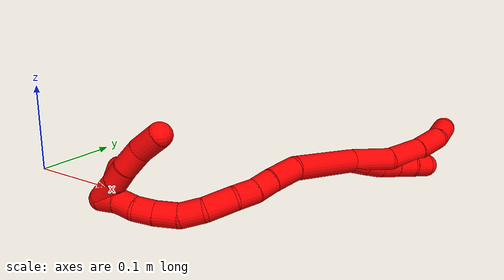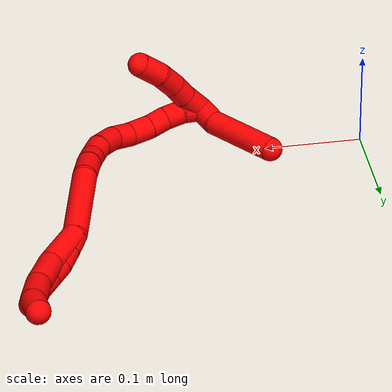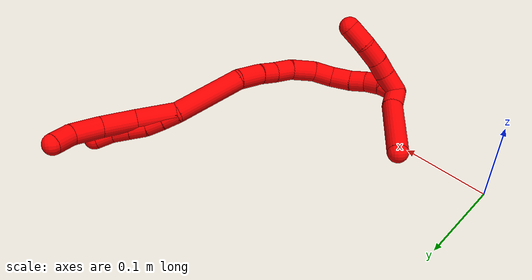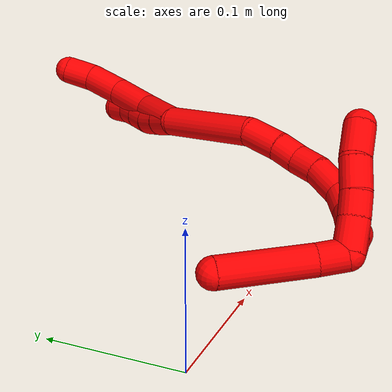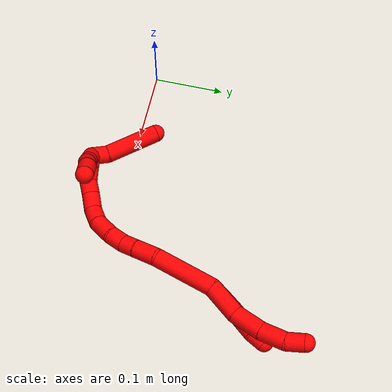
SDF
<sdf version="1.7">
 <world name="default">
  <model name="2">
   <static>0</static>
   <link name="2">
    <collision name="collision-cylinder-e_1_2_8">
     <pose>-0.001746 0.002349 0.023474 -0.099747 -0.073858 0.003688</pose>
     <geometry><cylinder><radius>0.0125</radius><length>0.047312</length></cylinder></geometry>
     <surface>
      <friction><ode><mu>1.16</mu><mu2>1.16</mu2><slip1>0</slip1><slip2>0</slip2></ode></friction>
      <contact><ode><kp>1e+06</kp><kd>1</kd><max_vel>0</max_vel><min_depth>0.001</min_depth></ode></contact>
     </surface>
    </collision>
    <visual name="visual-cylinder-e_1_2_8">
     <pose>-0.001746 0.002349 0.023474 -0.099747 -0.073858 0.003688</pose>
     <geometry><cylinder><radius>0.0125</radius><length>0.047312</length></cylinder></geometry>
     <material><ambient>1 0 0 1</ambient></material>
    </visual>
    <collision name="collision-cylinder-e_2_8_9">
     <pose>-0.004442 0.000691 0.067285 0.194582 -0.045858 -0.004476</pose>
     <geometry><cylinder><radius>0.0125</radius><length>0.041499</length></cylinder></geometry>
     <surface>
      <friction><ode><mu>1.16</mu><mu2>1.16</mu2><slip1>0</slip1><slip2>0</slip2></ode></friction>
      <contact><ode><kp>1e+06</kp><kd>1</kd><max_vel>0</max_vel><min_depth>0.001</min_depth></ode></contact>
     </surface>
    </collision>
    <visual name="visual-cylinder-e_2_8_9">
     <pose>-0.004442 0.000691 0.067285 0.194582 -0.045858 -0.004476</pose>
     <geometry><cylinder><radius>0.0125</radius><length>0.041499</length></cylinder></geometry>
     <material><ambient>1 0 0 1</ambient></material>
    </visual>
    <collision name="collision-cylinder-e_3_9_10">
     <pose>-0.006525 -0.009661 0.104206 0.365336 -0.06364 -0.01176</pose>
     <geometry><cylinder><radius>0.0125</radius><length>0.035586</length></cylinder></geometry>
     <surface>
      <friction><ode><mu>1.16</mu><mu2>1.16</mu2><slip1>0</slip1><slip2>0</slip2></ode></friction>
      <contact><ode><kp>1e+06</kp><kd>1</kd><max_vel>0</max_vel><min_depth>0.001</min_depth></ode></contact>
     </surface>
    </collision>
    <visual name="visual-cylinder-e_3_9_10">
     <pose>-0.006525 -0.009661 0.104206 0.365336 -0.06364 -0.01176</pose>
     <geometry><cylinder><radius>0.0125</radius><length>0.035586</length></cylinder></geometry>
     <material><ambient>1 0 0 1</ambient></material>
    </visual>
    <collision name="collision-cylinder-e_4_10_6">
     <pose>-0.01029 -0.023848 0.13056 0.676513 -0.207142 -0.073097</pose>
     <geometry><cylinder><radius>0.0125</radius><length>0.025603</length></cylinder></geometry>
     <surface>
      <friction><ode><mu>1.16</mu><mu2>1.16</mu2><slip1>0</slip1><slip2>0</slip2></ode></friction>
      <contact><ode><kp>1e+06</kp><kd>1</kd><max_vel>0</max_vel><min_depth>0.001</min_depth></ode></contact>
     </surface>
    </collision>
    <visual name="visual-cylinder-e_4_10_6">
     <pose>-0.01029 -0.023848 0.13056 0.676513 -0.207142 -0.073097</pose>
     <geometry><cylinder><radius>0.0125</radius><length>0.025603</length></cylinder></geometry>
     <material><ambient>1 0 0 1</ambient></material>
    </visual>
    <collision name="collision-cylinder-e_1_2_11">
     <pose>-0.003249 0.001342 0.009362 -0.142418 -0.330883 0.023818</pose>
     <geometry><cylinder><radius>0.0125</radius><length>0.02</length></cylinder></geometry>
     <surface>
      <friction><ode><mu>1.16</mu><mu2>1.16</mu2><slip1>0</slip1><slip2>0</slip2></ode></friction>
      <contact><ode><kp>1e+06</kp><kd>1</kd><max_vel>0</max_vel><min_depth>0.001</min_depth></ode></contact>
     </surface>
    </collision>
    <visual name="visual-cylinder-e_1_2_11">
     <pose>-0.003249 0.001342 0.009362 -0.142418 -0.330883 0.023818</pose>
     <geometry><cylinder><radius>0.0125</radius><length>0.02</length></cylinder></geometry>
     <material><ambient>1 0 0 1</ambient></material>
    </visual>
    <collision name="collision-cylinder-e_2_11_12">
     <pose>-0.009312 0.00409 0.028216 -0.146941 -0.285334 0.021144</pose>
     <geometry><cylinder><radius>0.0125</radius><length>0.02</length></cylinder></geometry>
     <surface>
      <friction><ode><mu>1.16</mu><mu2>1.16</mu2><slip1>0</slip1><slip2>0</slip2></ode></friction>
      <contact><ode><kp>1e+06</kp><kd>1</kd><max_vel>0</max_vel><min_depth>0.001</min_depth></ode></contact>
     </surface>
    </collision>
    <visual name="visual-cylinder-e_2_11_12">
     <pose>-0.009312 0.00409 0.028216 -0.146941 -0.285334 0.021144</pose>
     <geometry><cylinder><radius>0.0125</radius><length>0.02</length></cylinder></geometry>
     <material><ambient>1 0 0 1</ambient></material>
    </visual>
    <collision name="collision-cylinder-e_3_12_13">
     <pose>-0.012877 0.006639 0.047614 -0.115011 -0.075044 0.004322</pose>
     <geometry><cylinder><radius>0.0125</radius><length>0.02</length></cylinder></geometry>
     <surface>
      <friction><ode><mu>1.16</mu><mu2>1.16</mu2><slip1>0</slip1><slip2>0</slip2></ode></friction>
      <contact><ode><kp>1e+06</kp><kd>1</kd><max_vel>0</max_vel><min_depth>0.001</min_depth></ode></contact>
     </surface>
    </collision>
    <visual name="visual-cylinder-e_3_12_13">
     <pose>-0.012877 0.006639 0.047614 -0.115011 -0.075044 0.004322</pose>
     <geometry><cylinder><radius>0.0125</radius><length>0.02</length></cylinder></geometry>
     <material><ambient>1 0 0 1</ambient></material>
    </visual>
    <collision name="collision-cylinder-e_4_13_14">
     <pose>-0.014436 0.008969 0.067416 -0.119279 -0.081023 0.004841</pose>
     <geometry><cylinder><radius>0.0125</radius><length>0.02</length></cylinder></geometry>
     <surface>
      <friction><ode><mu>1.16</mu><mu2>1.16</mu2><slip1>0</slip1><slip2>0</slip2></ode></friction>
      <contact><ode><kp>1e+06</kp><kd>1</kd><max_vel>0</max_vel><min_depth>0.001</min_depth></ode></contact>
     </surface>
    </collision>
    <visual name="visual-cylinder-e_4_13_14">
     <pose>-0.014436 0.008969 0.067416 -0.119279 -0.081023 0.004841</pose>
     <geometry><cylinder><radius>0.0125</radius><length>0.02</length></cylinder></geometry>
     <material><ambient>1 0 0 1</ambient></material>
    </visual>
    <collision name="collision-cylinder-e_5_14_5">
     <pose>-0.017746 0.010029 0.086994 0.013032 -0.252801 -0.001656</pose>
     <geometry><cylinder><radius>0.0125</radius><length>0.02</length></cylinder></geometry>
     <surface>
      <friction><ode><mu>1.16</mu><mu2>1.16</mu2><slip1>0</slip1><slip2>0</slip2></ode></friction>
      <contact><ode><kp>1e+06</kp><kd>1</kd><max_vel>0</max_vel><min_depth>0.001</min_depth></ode></contact>
     </surface>
    </collision>
    <visual name="visual-cylinder-e_5_14_5">
     <pose>-0.017746 0.010029 0.086994 0.013032 -0.252801 -0.001656</pose>
     <geometry><cylinder><radius>0.0125</radius><length>0.02</length></cylinder></geometry>
     <material><ambient>1 0 0 1</ambient></material>
    </visual>
    <collision name="collision-cylinder-e_1_2_15">
     <pose>0.014169 0.008254 -0.03915 -2.93381 0.340364 -2.05085</pose>
     <geometry><cylinder><radius>0.0125</radius><length>0.08489</length></cylinder></geometry>
     <surface>
      <friction><ode><mu>1.16</mu><mu2>1.16</mu2><slip1>0</slip1><slip2>0</slip2></ode></friction>
      <contact><ode><kp>1e+06</kp><kd>1</kd><max_vel>0</max_vel><min_depth>0.001</min_depth></ode></contact>
     </surface>
    </collision>
    <visual name="visual-cylinder-e_1_2_15">
     <pose>0.014169 0.008254 -0.03915 -2.93381 0.340364 -2.05085</pose>
     <geometry><cylinder><radius>0.0125</radius><length>0.08489</length></cylinder></geometry>
     <material><ambient>1 0 0 1</ambient></material>
    </visual>
    <collision name="collision-cylinder-e_2_15_16">
     <pose>0.029427 0.022034 -0.092947 -2.78085 0.069376 -0.3761</pose>
     <geometry><cylinder><radius>0.0125</radius><length>0.031386</length></cylinder></geometry>
     <surface>
      <friction><ode><mu>1.16</mu><mu2>1.16</mu2><slip1>0</slip1><slip2>0</slip2></ode></friction>
      <contact><ode><kp>1e+06</kp><kd>1</kd><max_vel>0</max_vel><min_depth>0.001</min_depth></ode></contact>
     </surface>
    </collision>
    <visual name="visual-cylinder-e_2_15_16">
     <pose>0.029427 0.022034 -0.092947 -2.78085 0.069376 -0.3761</pose>
     <geometry><cylinder><radius>0.0125</radius><length>0.031386</length></cylinder></geometry>
     <material><ambient>1 0 0 1</ambient></material>
    </visual>
    <collision name="collision-cylinder-e_3_16_17">
     <pose>0.030027 0.031449 -0.117263 -2.75909 -0.04673 0.240237</pose>
     <geometry><cylinder><radius>0.0125</radius><length>0.020866</length></cylinder></geometry>
     <surface>
      <friction><ode><mu>1.16</mu><mu2>1.16</mu2><slip1>0</slip1><slip2>0</slip2></ode></friction>
      <contact><ode><kp>1e+06</kp><kd>1</kd><max_vel>0</max_vel><min_depth>0.001</min_depth></ode></contact>
     </surface>
    </collision>
    <visual name="visual-cylinder-e_3_16_17">
     <pose>0.030027 0.031449 -0.117263 -2.75909 -0.04673 0.240237</pose>
     <geometry><cylinder><radius>0.0125</radius><length>0.020866</length></cylinder></geometry>
     <material><ambient>1 0 0 1</ambient></material>
    </visual>
    <collision name="collision-cylinder-e_4_17_18">
     <pose>0.029954 0.037604 -0.138202 -2.9433 0.035964 -0.357718</pose>
     <geometry><cylinder><radius>0.0125</radius><length>0.023007</length></cylinder></geometry>
     <surface>
      <friction><ode><mu>1.16</mu><mu2>1.16</mu2><slip1>0</slip1><slip2>0</slip2></ode></friction>
      <contact><ode><kp>1e+06</kp><kd>1</kd><max_vel>0</max_vel><min_depth>0.001</min_depth></ode></contact>
     </surface>
    </collision>
    <visual name="visual-cylinder-e_4_17_18">
     <pose>0.029954 0.037604 -0.138202 -2.9433 0.035964 -0.357718</pose>
     <geometry><cylinder><radius>0.0125</radius><length>0.023007</length></cylinder></geometry>
     <material><ambient>1 0 0 1</ambient></material>
    </visual>
    <collision name="collision-cylinder-e_5_18_19">
     <pose>0.02745 0.041444 -0.164495 -3.03709 -0.190771 2.14106</pose>
     <geometry><cylinder><radius>0.0125</radius><length>0.030766</length></cylinder></geometry>
     <surface>
      <friction><ode><mu>1.16</mu><mu2>1.16</mu2><slip1>0</slip1><slip2>0</slip2></ode></friction>
      <contact><ode><kp>1e+06</kp><kd>1</kd><max_vel>0</max_vel><min_depth>0.001</min_depth></ode></contact>
     </surface>
    </collision>
    <visual name="visual-cylinder-e_5_18_19">
     <pose>0.02745 0.041444 -0.164495 -3.03709 -0.190771 2.14106</pose>
     <geometry><cylinder><radius>0.0125</radius><length>0.030766</length></cylinder></geometry>
     <material><ambient>1 0 0 1</ambient></material>
    </visual>
    <collision name="collision-cylinder-e_6_19_20">
     <pose>0.02004 0.040957 -0.190463 2.95533 -0.383426 -2.24459</pose>
     <geometry><cylinder><radius>0.0125</radius><length>0.024023</length></cylinder></geometry>
     <surface>
      <friction><ode><mu>1.16</mu><mu2>1.16</mu2><slip1>0</slip1><slip2>0</slip2></ode></friction>
      <contact><ode><kp>1e+06</kp><kd>1</kd><max_vel>0</max_vel><min_depth>0.001</min_depth></ode></contact>
     </surface>
    </collision>
    <visual name="visual-cylinder-e_6_19_20">
     <pose>0.02004 0.040957 -0.190463 2.95533 -0.383426 -2.24459</pose>
     <geometry><cylinder><radius>0.0125</radius><length>0.024023</length></cylinder></geometry>
     <material><ambient>1 0 0 1</ambient></material>
    </visual>
    <collision name="collision-cylinder-e_7_20_21">
     <pose>0.012472 0.033035 -0.211918 2.63295 -0.250202 -0.901161</pose>
     <geometry><cylinder><radius>0.0125</radius><length>0.024837</length></cylinder></geometry>
     <surface>
      <friction><ode><mu>1.16</mu><mu2>1.16</mu2><slip1>0</slip1><slip2>0</slip2></ode></friction>
      <contact><ode><kp>1e+06</kp><kd>1</kd><max_vel>0</max_vel><min_depth>0.001</min_depth></ode></contact>
     </surface>
    </collision>
    <visual name="visual-cylinder-e_7_20_21">
     <pose>0.012472 0.033035 -0.211918 2.63295 -0.250202 -0.901161</pose>
     <geometry><cylinder><radius>0.0125</radius><length>0.024837</length></cylinder></geometry>
     <material><ambient>1 0 0 1</ambient></material>
    </visual>
    <collision name="collision-cylinder-e_8_21_22">
     <pose>0.008376 0.021896 -0.230972 2.58817 -0.10127 -0.353176</pose>
     <geometry><cylinder><radius>0.0125</radius><length>0.020193</length></cylinder></geometry>
     <surface>
      <friction><ode><mu>1.16</mu><mu2>1.16</mu2><slip1>0</slip1><slip2>0</slip2></ode></friction>
      <contact><ode><kp>1e+06</kp><kd>1</kd><max_vel>0</max_vel><min_depth>0.001</min_depth></ode></contact>
     </surface>
    </collision>
    <visual name="visual-cylinder-e_8_21_22">
     <pose>0.008376 0.021896 -0.230972 2.58817 -0.10127 -0.353176</pose>
     <geometry><cylinder><radius>0.0125</radius><length>0.020193</length></cylinder></geometry>
     <material><ambient>1 0 0 1</ambient></material>
    </visual>
    <collision name="collision-cylinder-e_9_22_23">
     <pose>0.00554 0.00926 -0.246056 2.29741 -0.182406 -0.40181</pose>
     <geometry><cylinder><radius>0.0125</radius><length>0.020017</length></cylinder></geometry>
     <surface>
      <friction><ode><mu>1.16</mu><mu2>1.16</mu2><slip1>0</slip1><slip2>0</slip2></ode></friction>
      <contact><ode><kp>1e+06</kp><kd>1</kd><max_vel>0</max_vel><min_depth>0.001</min_depth></ode></contact>
     </surface>
    </collision>
    <visual name="visual-cylinder-e_9_22_23">
     <pose>0.00554 0.00926 -0.246056 2.29741 -0.182406 -0.40181</pose>
     <geometry><cylinder><radius>0.0125</radius><length>0.020017</length></cylinder></geometry>
     <material><ambient>1 0 0 1</ambient></material>
    </visual>
    <collision name="collision-cylinder-e_10_23_1">
     <pose>-0.000518 -0.004027 -0.259449 2.4284 -0.437735 -1.07656</pose>
     <geometry><cylinder><radius>0.0125</radius><length>0.020015</length></cylinder></geometry>
     <surface>
      <friction><ode><mu>1.16</mu><mu2>1.16</mu2><slip1>0</slip1><slip2>0</slip2></ode></friction>
      <contact><ode><kp>1e+06</kp><kd>1</kd><max_vel>0</max_vel><min_depth>0.001</min_depth></ode></contact>
     </surface>
    </collision>
    <visual name="visual-cylinder-e_10_23_1">
     <pose>-0.000518 -0.004027 -0.259449 2.4284 -0.437735 -1.07656</pose>
     <geometry><cylinder><radius>0.0125</radius><length>0.020015</length></cylinder></geometry>
     <material><ambient>1 0 0 1</ambient></material>
    </visual>
    <collision name="collision-cylinder-e_1_1_24">
     <pose>0.006884 -0.009731 -0.259847 -0.035027 1.06418 -0.020623</pose>
     <geometry><cylinder><radius>0.0125</radius><length>0.026632</length></cylinder></geometry>
     <surface>
      <friction><ode><mu>1.16</mu><mu2>1.16</mu2><slip1>0</slip1><slip2>0</slip2></ode></friction>
      <contact><ode><kp>1e+06</kp><kd>1</kd><max_vel>0</max_vel><min_depth>0.001</min_depth></ode></contact>
     </surface>
    </collision>
    <visual name="visual-cylinder-e_1_1_24">
     <pose>0.006884 -0.009731 -0.259847 -0.035027 1.06418 -0.020623</pose>
     <geometry><cylinder><radius>0.0125</radius><length>0.026632</length></cylinder></geometry>
     <material><ambient>1 0 0 1</ambient></material>
    </visual>
    <collision name="collision-cylinder-e_2_24_25">
     <pose>0.027288 -0.010511 -0.248602 0.207256 1.06146 0.121925</pose>
     <geometry><cylinder><radius>0.0125</radius><length>0.020069</length></cylinder></geometry>
     <surface>
      <friction><ode><mu>1.16</mu><mu2>1.16</mu2><slip1>0</slip1><slip2>0</slip2></ode></friction>
      <contact><ode><kp>1e+06</kp><kd>1</kd><max_vel>0</max_vel><min_depth>0.001</min_depth></ode></contact>
     </surface>
    </collision>
    <visual name="visual-cylinder-e_2_24_25">
     <pose>0.027288 -0.010511 -0.248602 0.207256 1.06146 0.121925</pose>
     <geometry><cylinder><radius>0.0125</radius><length>0.020069</length></cylinder></geometry>
     <material><ambient>1 0 0 1</ambient></material>
    </visual>
    <collision name="collision-cylinder-e_3_25_26">
     <pose>0.046168 -0.012912 -0.23641 0.186148 0.930798 0.093684</pose>
     <geometry><cylinder><radius>0.0125</radius><length>0.025231</length></cylinder></geometry>
     <surface>
      <friction><ode><mu>1.16</mu><mu2>1.16</mu2><slip1>0</slip1><slip2>0</slip2></ode></friction>
      <contact><ode><kp>1e+06</kp><kd>1</kd><max_vel>0</max_vel><min_depth>0.001</min_depth></ode></contact>
     </surface>
    </collision>
    <visual name="visual-cylinder-e_3_25_26">
     <pose>0.046168 -0.012912 -0.23641 0.186148 0.930798 0.093684</pose>
     <geometry><cylinder><radius>0.0125</radius><length>0.025231</length></cylinder></geometry>
     <material><ambient>1 0 0 1</ambient></material>
    </visual>
    <collision name="collision-cylinder-e_4_26_4">
     <pose>0.067498 -0.01255 -0.220749 -0.209596 0.925374 -0.104835</pose>
     <geometry><cylinder><radius>0.0125</radius><length>0.028067</length></cylinder></geometry>
     <surface>
      <friction><ode><mu>1.16</mu><mu2>1.16</mu2><slip1>0</slip1><slip2>0</slip2></ode></friction>
      <contact><ode><kp>1e+06</kp><kd>1</kd><max_vel>0</max_vel><min_depth>0.001</min_depth></ode></contact>
     </surface>
    </collision>
    <visual name="visual-cylinder-e_4_26_4">
     <pose>0.067498 -0.01255 -0.220749 -0.209596 0.925374 -0.104835</pose>
     <geometry><cylinder><radius>0.0125</radius><length>0.028067</length></cylinder></geometry>
     <material><ambient>1 0 0 1</ambient></material>
    </visual>
    <collision name="collision-cylinder-e_1_1_27">
     <pose>-0.012156 -0.016971 -0.260839 0.908829 -0.693804 -0.34961</pose>
     <geometry><cylinder><radius>0.0125</radius><length>0.023132</length></cylinder></geometry>
     <surface>
      <friction><ode><mu>1.16</mu><mu2>1.16</mu2><slip1>0</slip1><slip2>0</slip2></ode></friction>
      <contact><ode><kp>1e+06</kp><kd>1</kd><max_vel>0</max_vel><min_depth>0.001</min_depth></ode></contact>
     </surface>
    </collision>
    <visual name="visual-cylinder-e_1_1_27">
     <pose>-0.012156 -0.016971 -0.260839 0.908829 -0.693804 -0.34961</pose>
     <geometry><cylinder><radius>0.0125</radius><length>0.023132</length></cylinder></geometry>
     <material><ambient>1 0 0 1</ambient></material>
    </visual>
    <collision name="collision-cylinder-e_2_27_3">
     <pose>-0.040107 -0.054768 -0.245027 1.24656 -0.564294 -0.410895</pose>
     <geometry><cylinder><radius>0.0125</radius><length>0.076868</length></cylinder></geometry>
     <surface>
      <friction><ode><mu>1.16</mu><mu2>1.16</mu2><slip1>0</slip1><slip2>0</slip2></ode></friction>
      <contact><ode><kp>1e+06</kp><kd>1</kd><max_vel>0</max_vel><min_depth>0.001</min_depth></ode></contact>
     </surface>
    </collision>
    <visual name="visual-cylinder-e_2_27_3">
     <pose>-0.040107 -0.054768 -0.245027 1.24656 -0.564294 -0.410895</pose>
     <geometry><cylinder><radius>0.0125</radius><length>0.076868</length></cylinder></geometry>
     <material><ambient>1 0 0 1</ambient></material>
    </visual>
    <collision name="collision-sphere-3">
     <pose>-0.060662 -0.085552 -0.234681 0 -0 0</pose>
     <geometry><sphere><radius>0.0125</radius></sphere></geometry>
     <surface>
      <friction><ode><mu>1.16</mu><mu2>1.16</mu2><slip1>0</slip1><slip2>0</slip2></ode></friction>
      <contact><ode><kp>1e+06</kp><kd>1</kd><max_vel>0</max_vel><min_depth>0.001</min_depth></ode></contact>
     </surface>
    </collision>
    <visual name="visual-sphere-3">
     <pose>-0.060662 -0.085552 -0.234681 0 -0 0</pose>
     <geometry><sphere><radius>0.0125</radius></sphere></geometry>
     <material><ambient>1 0 0 1</ambient></material>
    </visual>
    <collision name="collision-sphere-27">
     <pose>-0.019552 -0.023985 -0.255373 0 -0 0</pose>
     <geometry><sphere><radius>0.0125</radius></sphere></geometry>
     <surface>
      <friction><ode><mu>1.16</mu><mu2>1.16</mu2><slip1>0</slip1><slip2>0</slip2></ode></friction>
      <contact><ode><kp>1e+06</kp><kd>1</kd><max_vel>0</max_vel><min_depth>0.001</min_depth></ode></contact>
     </surface>
    </collision>
    <visual name="visual-sphere-27">
     <pose>-0.019552 -0.023985 -0.255373 0 -0 0</pose>
     <geometry><sphere><radius>0.0125</radius></sphere></geometry>
     <material><ambient>1 0 0 1</ambient></material>
    </visual>
    <collision name="collision-sphere-4">
     <pose>0.078708 -0.010794 -0.212492 0 -0 0</pose>
     <geometry><sphere><radius>0.0125</radius></sphere></geometry>
     <surface>
      <friction><ode><mu>1.16</mu><mu2>1.16</mu2><slip1>0</slip1><slip2>0</slip2></ode></friction>
      <contact><ode><kp>1e+06</kp><kd>1</kd><max_vel>0</max_vel><min_depth>0.001</min_depth></ode></contact>
     </surface>
    </collision>
    <visual name="visual-sphere-4">
     <pose>0.078708 -0.010794 -0.212492 0 -0 0</pose>
     <geometry><sphere><radius>0.0125</radius></sphere></geometry>
     <material><ambient>1 0 0 1</ambient></material>
    </visual>
    <collision name="collision-sphere-26">
     <pose>0.056287 -0.014307 -0.229006 0 -0 0</pose>
     <geometry><sphere><radius>0.0125</radius></sphere></geometry>
     <surface>
      <friction><ode><mu>1.16</mu><mu2>1.16</mu2><slip1>0</slip1><slip2>0</slip2></ode></friction>
      <contact><ode><kp>1e+06</kp><kd>1</kd><max_vel>0</max_vel><min_depth>0.001</min_depth></ode></contact>
     </surface>
    </collision>
    <visual name="visual-sphere-26">
     <pose>0.056287 -0.014307 -0.229006 0 -0 0</pose>
     <geometry><sphere><radius>0.0125</radius></sphere></geometry>
     <material><ambient>1 0 0 1</ambient></material>
    </visual>
    <collision name="collision-sphere-25">
     <pose>0.036049 -0.011518 -0.243814 0 -0 0</pose>
     <geometry><sphere><radius>0.0125</radius></sphere></geometry>
     <surface>
      <friction><ode><mu>1.16</mu><mu2>1.16</mu2><slip1>0</slip1><slip2>0</slip2></ode></friction>
      <contact><ode><kp>1e+06</kp><kd>1</kd><max_vel>0</max_vel><min_depth>0.001</min_depth></ode></contact>
     </surface>
    </collision>
    <visual name="visual-sphere-25">
     <pose>0.036049 -0.011518 -0.243814 0 -0 0</pose>
     <geometry><sphere><radius>0.0125</radius></sphere></geometry>
     <material><ambient>1 0 0 1</ambient></material>
    </visual>
    <collision name="collision-sphere-24">
     <pose>0.018527 -0.009504 -0.25339 0 -0 0</pose>
     <geometry><sphere><radius>0.0125</radius></sphere></geometry>
     <surface>
      <friction><ode><mu>1.16</mu><mu2>1.16</mu2><slip1>0</slip1><slip2>0</slip2></ode></friction>
      <contact><ode><kp>1e+06</kp><kd>1</kd><max_vel>0</max_vel><min_depth>0.001</min_depth></ode></contact>
     </surface>
    </collision>
    <visual name="visual-sphere-24">
     <pose>0.018527 -0.009504 -0.25339 0 -0 0</pose>
     <geometry><sphere><radius>0.0125</radius></sphere></geometry>
     <material><ambient>1 0 0 1</ambient></material>
    </visual>
    <collision name="collision-sphere-1">
     <pose>-0.00476 -0.009957 -0.266304 0 -0 0</pose>
     <geometry><sphere><radius>0.0125</radius></sphere></geometry>
     <surface>
      <friction><ode><mu>1.16</mu><mu2>1.16</mu2><slip1>0</slip1><slip2>0</slip2></ode></friction>
      <contact><ode><kp>1e+06</kp><kd>1</kd><max_vel>0</max_vel><min_depth>0.001</min_depth></ode></contact>
     </surface>
    </collision>
    <visual name="visual-sphere-1">
     <pose>-0.00476 -0.009957 -0.266304 0 -0 0</pose>
     <geometry><sphere><radius>0.0125</radius></sphere></geometry>
     <material><ambient>1 0 0 1</ambient></material>
    </visual>
    <collision name="collision-sphere-23">
     <pose>0.003724 0.001903 -0.252595 0 -0 0</pose>
     <geometry><sphere><radius>0.0125</radius></sphere></geometry>
     <surface>
      <friction><ode><mu>1.16</mu><mu2>1.16</mu2><slip1>0</slip1><slip2>0</slip2></ode></friction>
      <contact><ode><kp>1e+06</kp><kd>1</kd><max_vel>0</max_vel><min_depth>0.001</min_depth></ode></contact>
     </surface>
    </collision>
    <visual name="visual-sphere-23">
     <pose>0.003724 0.001903 -0.252595 0 -0 0</pose>
     <geometry><sphere><radius>0.0125</radius></sphere></geometry>
     <material><ambient>1 0 0 1</ambient></material>
    </visual>
    <collision name="collision-sphere-22">
     <pose>0.007355 0.016616 -0.239517 0 -0 0</pose>
     <geometry><sphere><radius>0.0125</radius></sphere></geometry>
     <surface>
      <friction><ode><mu>1.16</mu><mu2>1.16</mu2><slip1>0</slip1><slip2>0</slip2></ode></friction>
      <contact><ode><kp>1e+06</kp><kd>1</kd><max_vel>0</max_vel><min_depth>0.001</min_depth></ode></contact>
     </surface>
    </collision>
    <visual name="visual-sphere-22">
     <pose>0.007355 0.016616 -0.239517 0 -0 0</pose>
     <geometry><sphere><radius>0.0125</radius></sphere></geometry>
     <material><ambient>1 0 0 1</ambient></material>
    </visual>
    <collision name="collision-sphere-21">
     <pose>0.009397 0.027175 -0.222427 0 -0 0</pose>
     <geometry><sphere><radius>0.0125</radius></sphere></geometry>
     <surface>
      <friction><ode><mu>1.16</mu><mu2>1.16</mu2><slip1>0</slip1><slip2>0</slip2></ode></friction>
      <contact><ode><kp>1e+06</kp><kd>1</kd><max_vel>0</max_vel><min_depth>0.001</min_depth></ode></contact>
     </surface>
    </collision>
    <visual name="visual-sphere-21">
     <pose>0.009397 0.027175 -0.222427 0 -0 0</pose>
     <geometry><sphere><radius>0.0125</radius></sphere></geometry>
     <material><ambient>1 0 0 1</ambient></material>
    </visual>
    <collision name="collision-sphere-11">
     <pose>-0.006498 0.002685 0.018724 0 -0 0</pose>
     <geometry><sphere><radius>0.0125</radius></sphere></geometry>
     <surface>
      <friction><ode><mu>1.16</mu><mu2>1.16</mu2><slip1>0</slip1><slip2>0</slip2></ode></friction>
      <contact><ode><kp>1e+06</kp><kd>1</kd><max_vel>0</max_vel><min_depth>0.001</min_depth></ode></contact>
     </surface>
    </collision>
    <visual name="visual-sphere-11">
     <pose>-0.006498 0.002685 0.018724 0 -0 0</pose>
     <geometry><sphere><radius>0.0125</radius></sphere></geometry>
     <material><ambient>1 0 0 1</ambient></material>
    </visual>
    <collision name="collision-sphere-6">
     <pose>-0.012922 -0.031692 0.140329 0 -0 0</pose>
     <geometry><sphere><radius>0.0125</radius></sphere></geometry>
     <surface>
      <friction><ode><mu>1.16</mu><mu2>1.16</mu2><slip1>0</slip1><slip2>0</slip2></ode></friction>
      <contact><ode><kp>1e+06</kp><kd>1</kd><max_vel>0</max_vel><min_depth>0.001</min_depth></ode></contact>
     </surface>
    </collision>
    <visual name="visual-sphere-6">
     <pose>-0.012922 -0.031692 0.140329 0 -0 0</pose>
     <geometry><sphere><radius>0.0125</radius></sphere></geometry>
     <material><ambient>1 0 0 1</ambient></material>
    </visual>
    <collision name="collision-sphere-10">
     <pose>-0.007657 -0.016005 0.120791 0 -0 0</pose>
     <geometry><sphere><radius>0.0125</radius></sphere></geometry>
     <surface>
      <friction><ode><mu>1.16</mu><mu2>1.16</mu2><slip1>0</slip1><slip2>0</slip2></ode></friction>
      <contact><ode><kp>1e+06</kp><kd>1</kd><max_vel>0</max_vel><min_depth>0.001</min_depth></ode></contact>
     </surface>
    </collision>
    <visual name="visual-sphere-10">
     <pose>-0.007657 -0.016005 0.120791 0 -0 0</pose>
     <geometry><sphere><radius>0.0125</radius></sphere></geometry>
     <material><ambient>1 0 0 1</ambient></material>
    </visual>
    <collision name="collision-sphere-9">
     <pose>-0.005394 -0.003317 0.087622 0 -0 0</pose>
     <geometry><sphere><radius>0.0125</radius></sphere></geometry>
     <surface>
      <friction><ode><mu>1.16</mu><mu2>1.16</mu2><slip1>0</slip1><slip2>0</slip2></ode></friction>
      <contact><ode><kp>1e+06</kp><kd>1</kd><max_vel>0</max_vel><min_depth>0.001</min_depth></ode></contact>
     </surface>
    </collision>
    <visual name="visual-sphere-9">
     <pose>-0.005394 -0.003317 0.087622 0 -0 0</pose>
     <geometry><sphere><radius>0.0125</radius></sphere></geometry>
     <material><ambient>1 0 0 1</ambient></material>
    </visual>
    <collision name="collision-sphere-2">
     <geometry><sphere><radius>0.0125</radius></sphere></geometry>
     <surface>
      <friction><ode><mu>1.16</mu><mu2>1.16</mu2><slip1>0</slip1><slip2>0</slip2></ode></friction>
      <contact><ode><kp>1e+06</kp><kd>1</kd><max_vel>0</max_vel><min_depth>0.001</min_depth></ode></contact>
     </surface>
    </collision>
    <visual name="visual-sphere-2">
     <geometry><sphere><radius>0.0125</radius></sphere></geometry>
     <material><ambient>1 0 0 1</ambient></material>
    </visual>
    <collision name="collision-sphere-19">
     <pose>0.024533 0.04302 -0.179516 0 -0 0</pose>
     <geometry><sphere><radius>0.0125</radius></sphere></geometry>
     <surface>
      <friction><ode><mu>1.16</mu><mu2>1.16</mu2><slip1>0</slip1><slip2>0</slip2></ode></friction>
      <contact><ode><kp>1e+06</kp><kd>1</kd><max_vel>0</max_vel><min_depth>0.001</min_depth></ode></contact>
     </surface>
    </collision>
    <visual name="visual-sphere-19">
     <pose>0.024533 0.04302 -0.179516 0 -0 0</pose>
     <geometry><sphere><radius>0.0125</radius></sphere></geometry>
     <material><ambient>1 0 0 1</ambient></material>
    </visual>
    <collision name="collision-sphere-8">
     <pose>-0.003491 0.004699 0.046949 0 -0 0</pose>
     <geometry><sphere><radius>0.0125</radius></sphere></geometry>
     <surface>
      <friction><ode><mu>1.16</mu><mu2>1.16</mu2><slip1>0</slip1><slip2>0</slip2></ode></friction>
      <contact><ode><kp>1e+06</kp><kd>1</kd><max_vel>0</max_vel><min_depth>0.001</min_depth></ode></contact>
     </surface>
    </collision>
    <visual name="visual-sphere-8">
     <pose>-0.003491 0.004699 0.046949 0 -0 0</pose>
     <geometry><sphere><radius>0.0125</radius></sphere></geometry>
     <material><ambient>1 0 0 1</ambient></material>
    </visual>
    <collision name="collision-sphere-12">
     <pose>-0.012127 0.005495 0.037708 0 -0 0</pose>
     <geometry><sphere><radius>0.0125</radius></sphere></geometry>
     <surface>
      <friction><ode><mu>1.16</mu><mu2>1.16</mu2><slip1>0</slip1><slip2>0</slip2></ode></friction>
      <contact><ode><kp>1e+06</kp><kd>1</kd><max_vel>0</max_vel><min_depth>0.001</min_depth></ode></contact>
     </surface>
    </collision>
    <visual name="visual-sphere-12">
     <pose>-0.012127 0.005495 0.037708 0 -0 0</pose>
     <geometry><sphere><radius>0.0125</radius></sphere></geometry>
     <material><ambient>1 0 0 1</ambient></material>
    </visual>
    <collision name="collision-sphere-13">
     <pose>-0.013627 0.007783 0.05752 0 -0 0</pose>
     <geometry><sphere><radius>0.0125</radius></sphere></geometry>
     <surface>
      <friction><ode><mu>1.16</mu><mu2>1.16</mu2><slip1>0</slip1><slip2>0</slip2></ode></friction>
      <contact><ode><kp>1e+06</kp><kd>1</kd><max_vel>0</max_vel><min_depth>0.001</min_depth></ode></contact>
     </surface>
    </collision>
    <visual name="visual-sphere-13">
     <pose>-0.013627 0.007783 0.05752 0 -0 0</pose>
     <geometry><sphere><radius>0.0125</radius></sphere></geometry>
     <material><ambient>1 0 0 1</ambient></material>
    </visual>
    <collision name="collision-sphere-14">
     <pose>-0.015245 0.010155 0.077313 0 -0 0</pose>
     <geometry><sphere><radius>0.0125</radius></sphere></geometry>
     <surface>
      <friction><ode><mu>1.16</mu><mu2>1.16</mu2><slip1>0</slip1><slip2>0</slip2></ode></friction>
      <contact><ode><kp>1e+06</kp><kd>1</kd><max_vel>0</max_vel><min_depth>0.001</min_depth></ode></contact>
     </surface>
    </collision>
    <visual name="visual-sphere-14">
     <pose>-0.015245 0.010155 0.077313 0 -0 0</pose>
     <geometry><sphere><radius>0.0125</radius></sphere></geometry>
     <material><ambient>1 0 0 1</ambient></material>
    </visual>
    <collision name="collision-sphere-5">
     <pose>-0.020248 0.009903 0.096676 0 -0 0</pose>
     <geometry><sphere><radius>0.0125</radius></sphere></geometry>
     <surface>
      <friction><ode><mu>1.16</mu><mu2>1.16</mu2><slip1>0</slip1><slip2>0</slip2></ode></friction>
      <contact><ode><kp>1e+06</kp><kd>1</kd><max_vel>0</max_vel><min_depth>0.001</min_depth></ode></contact>
     </surface>
    </collision>
    <visual name="visual-sphere-5">
     <pose>-0.020248 0.009903 0.096676 0 -0 0</pose>
     <geometry><sphere><radius>0.0125</radius></sphere></geometry>
     <material><ambient>1 0 0 1</ambient></material>
    </visual>
    <collision name="collision-sphere-15">
     <pose>0.028339 0.016508 -0.078299 0 -0 0</pose>
     <geometry><sphere><radius>0.0125</radius></sphere></geometry>
     <surface>
      <friction><ode><mu>1.16</mu><mu2>1.16</mu2><slip1>0</slip1><slip2>0</slip2></ode></friction>
      <contact><ode><kp>1e+06</kp><kd>1</kd><max_vel>0</max_vel><min_depth>0.001</min_depth></ode></contact>
     </surface>
    </collision>
    <visual name="visual-sphere-15">
     <pose>0.028339 0.016508 -0.078299 0 -0 0</pose>
     <geometry><sphere><radius>0.0125</radius></sphere></geometry>
     <material><ambient>1 0 0 1</ambient></material>
    </visual>
    <collision name="collision-sphere-16">
     <pose>0.030515 0.027559 -0.107594 0 -0 0</pose>
     <geometry><sphere><radius>0.0125</radius></sphere></geometry>
     <surface>
      <friction><ode><mu>1.16</mu><mu2>1.16</mu2><slip1>0</slip1><slip2>0</slip2></ode></friction>
      <contact><ode><kp>1e+06</kp><kd>1</kd><max_vel>0</max_vel><min_depth>0.001</min_depth></ode></contact>
     </surface>
    </collision>
    <visual name="visual-sphere-16">
     <pose>0.030515 0.027559 -0.107594 0 -0 0</pose>
     <geometry><sphere><radius>0.0125</radius></sphere></geometry>
     <material><ambient>1 0 0 1</ambient></material>
    </visual>
    <collision name="collision-sphere-17">
     <pose>0.02954 0.035339 -0.126931 0 -0 0</pose>
     <geometry><sphere><radius>0.0125</radius></sphere></geometry>
     <surface>
      <friction><ode><mu>1.16</mu><mu2>1.16</mu2><slip1>0</slip1><slip2>0</slip2></ode></friction>
      <contact><ode><kp>1e+06</kp><kd>1</kd><max_vel>0</max_vel><min_depth>0.001</min_depth></ode></contact>
     </surface>
    </collision>
    <visual name="visual-sphere-17">
     <pose>0.02954 0.035339 -0.126931 0 -0 0</pose>
     <geometry><sphere><radius>0.0125</radius></sphere></geometry>
     <material><ambient>1 0 0 1</ambient></material>
    </visual>
    <collision name="collision-sphere-18">
     <pose>0.030367 0.039868 -0.149473 0 -0 0</pose>
     <geometry><sphere><radius>0.0125</radius></sphere></geometry>
     <surface>
      <friction><ode><mu>1.16</mu><mu2>1.16</mu2><slip1>0</slip1><slip2>0</slip2></ode></friction>
      <contact><ode><kp>1e+06</kp><kd>1</kd><max_vel>0</max_vel><min_depth>0.001</min_depth></ode></contact>
     </surface>
    </collision>
    <visual name="visual-sphere-18">
     <pose>0.030367 0.039868 -0.149473 0 -0 0</pose>
     <geometry><sphere><radius>0.0125</radius></sphere></geometry>
     <material><ambient>1 0 0 1</ambient></material>
    </visual>
    <collision name="collision-sphere-20">
     <pose>0.015546 0.038894 -0.20141 0 -0 0</pose>
     <geometry><sphere><radius>0.0125</radius></sphere></geometry>
     <surface>
      <friction><ode><mu>1.16</mu><mu2>1.16</mu2><slip1>0</slip1><slip2>0</slip2></ode></friction>
      <contact><ode><kp>1e+06</kp><kd>1</kd><max_vel>0</max_vel><min_depth>0.001</min_depth></ode></contact>
     </surface>
    </collision>
    <visual name="visual-sphere-20">
     <pose>0.015546 0.038894 -0.20141 0 -0 0</pose>
     <geometry><sphere><radius>0.0125</radius></sphere></geometry>
     <material><ambient>1 0 0 1</ambient></material>
    </visual>
    <inertial>
     <pose>0.005145 0.000795 -0.099656 0 -0 0</pose>
     <mass>0.75</mass>
     <inertia><ixx>-9e-06</ixx><ixy>0</ixy><ixz>0</ixz><iyy>1.2e-05</iyy><iyz>0</iyz><izz>3.6e-05</izz></inertia>
    </inertial>
   </link>
   <pose>0.32031 0.154397 0.029714 -1.48461 -0.982015 -0.685778</pose>
  </model>
 </world>
</sdf>
